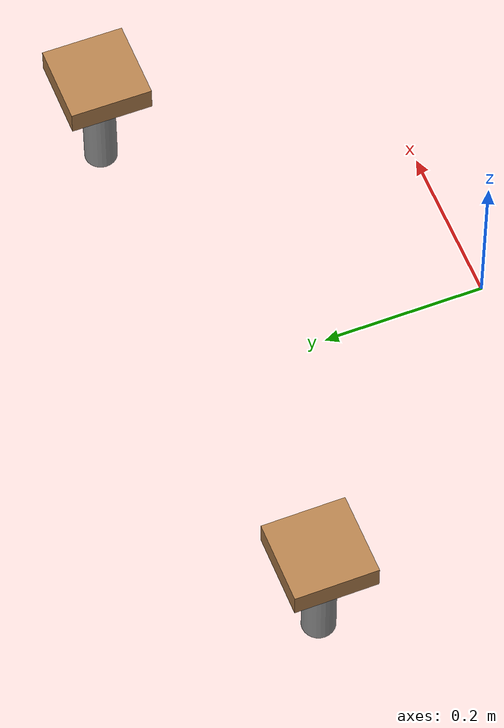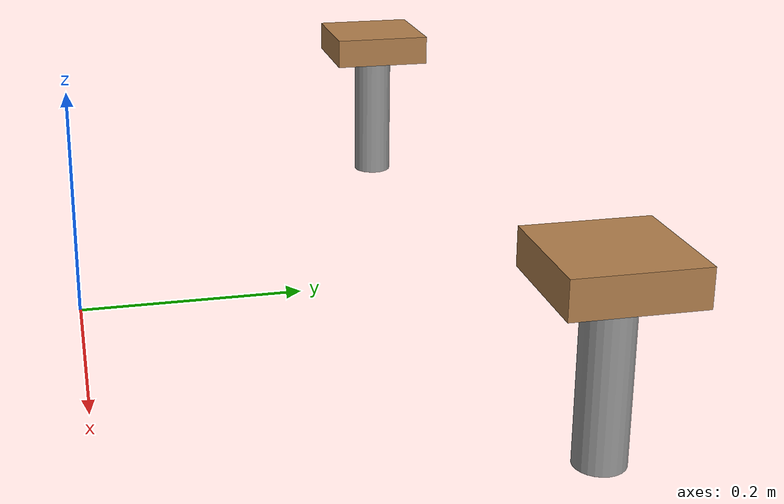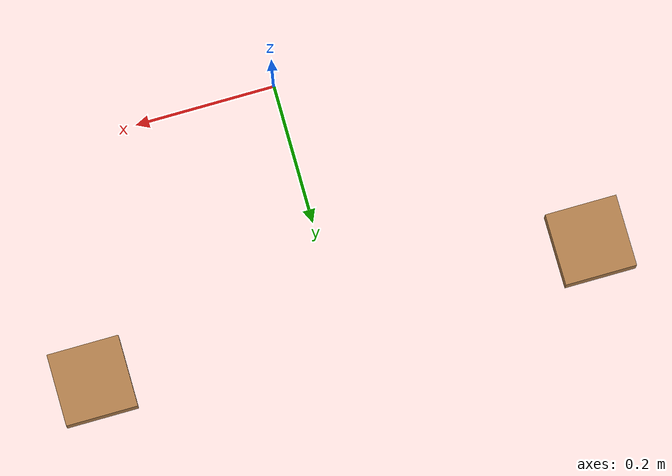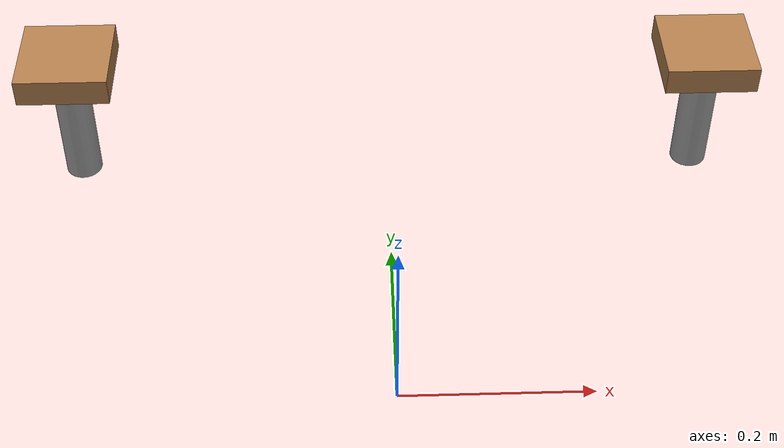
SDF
<?xml version="1.0" ?>
<sdf version="1.4">
  <world name="default">
    <physics type="ode">
      <gravity>0 0 -9.81</gravity>
      <ode>
        <solver>
          <type>quick</type>
          <iters>20</iters>
          <sor>1.0</sor>
        </solver>
        <constraints>
          <cfm>0.0</cfm>
          <erp>0.2</erp>
          <contact_max_correcting_vel>100.0</contact_max_correcting_vel>
          <contact_surface_layer>0.0</contact_surface_layer>
        </constraints>
      </ode>
      <real_time_update_rate>1000</real_time_update_rate>
      <max_step_size>0.001</max_step_size>
    </physics>
    <light type="directional" name="light1">
      <cast_shadows>true</cast_shadows>
      <pose>-2 0 4 0 0 0</pose>
      <diffuse>1.0 1.0 1.0 1</diffuse>
      <specular>0.1 0.1 0.1 1</specular>
      <attenuation>
        <range>20</range>
        <constant>0.9</constant>
        <linear>0.01</linear>
        <quadratic>0.001</quadratic>
      </attenuation>
      <direction>0.2 0.0 -1.0</direction>
    </light>
    <include>
      <uri>model://table_short</uri>
      <name>table1</name>
      <pose>-0.35 0.35 0 0 0 0</pose>
    </include>
    <include>
      <uri>model://table_short</uri>
      <name>table2</name>
      <pose>0.35 0.35 0 0 0 0</pose>
    </include>
    <gui fullscreen="0">
      <camera name="user_camera">
        <pose>1.623295 2.046589 1.968838 -0.000001 0.607641 -2.414998</pose>
        <view_controller>orbit</view_controller>
      </camera>
    </gui>
  </world>
</sdf>

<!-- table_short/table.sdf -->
<sdf version='1.4'>
<model name='table'>
      <static>1</static>
      <link name='link'>
        <collision name='surface'>
          <pose>0.000000 0.000000 0.150000 0.000000 0.000000 0.000000</pose>
          <geometry>
            <box>
              <size>0.100000 0.100000 0.030000</size>
            </box>
          </geometry>
          <surface>
            <bounce/>
            <friction>
              <ode/>
            </friction>
            <contact>
              <ode/>
            </contact>
          </surface>
        </collision>
        <visual name='visual1'>
          <pose>0.000000 0.000000 0.150000 0.000000 0.000000 0.000000</pose>
          <geometry>
            <box>
              <size>0.100000 0.100000 0.030000</size>
            </box>
          </geometry>
          <material>
            <script>
              <uri>file://media/materials/scripts/gazebo.material</uri>
              <name>Gazebo/Wood</name>
            </script>
          </material>
        </visual>
        <collision name='center_leg'>
          <pose>0.000000 0.000000 0.075000 0.000000 0.000000 0.000000</pose>
          <geometry>
            <cylinder>
              <radius>0.020000</radius>
              <length>0.150000</length>
            </cylinder>
          </geometry>
          <surface>
            <bounce/>
            <friction>
              <ode/>
            </friction>
            <contact>
              <ode/>
            </contact>
          </surface>
        </collision>
        <visual name='center_leg'>
          <pose>-0.000000 0.000000 0.075000 0.000000 0.000000 0.000000</pose>
          <geometry>
            <cylinder>
              <radius>0.020000</radius>
              <length>0.150000</length>
            </cylinder>
          </geometry>
          <material>
            <script>
              <uri>file://media/materials/scripts/gazebo.material</uri>
              <name>Gazebo/Grey</name>
            </script>
          </material>
        </visual>
        <velocity_decay>
          <linear>0.000000</linear>
          <angular>0.000000</angular>
        </velocity_decay>
        <self_collide>0</self_collide>
        <kinematic>0</kinematic>
        <gravity>1</gravity>
      </link>
    </model>
</sdf>
